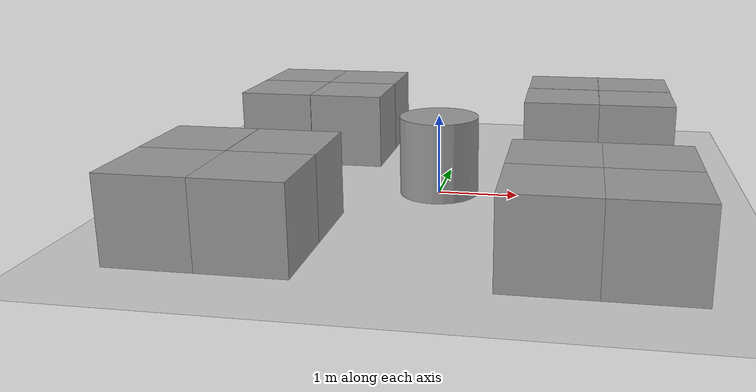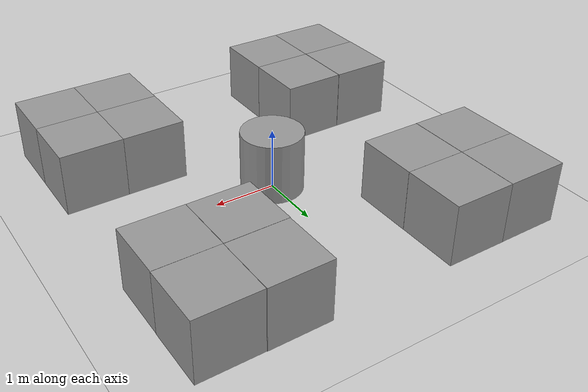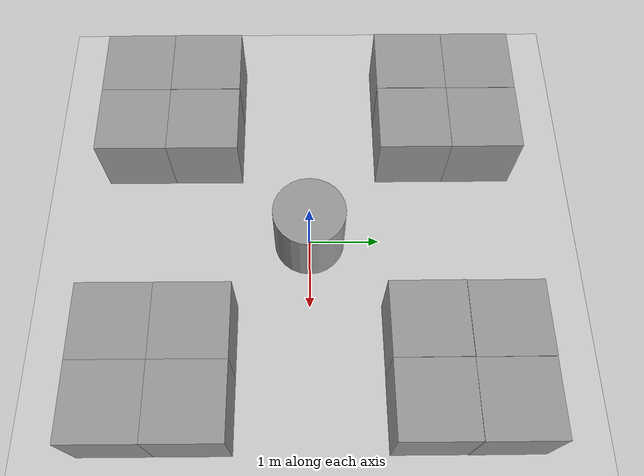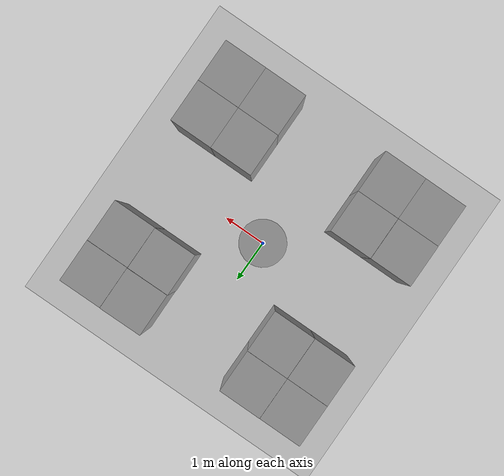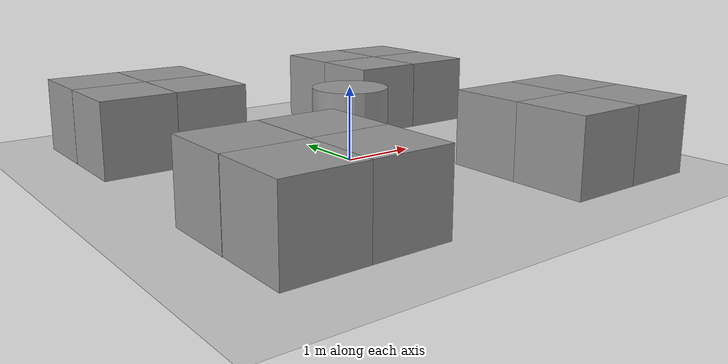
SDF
<sdf version="1.7">
 <world name="default">
  <light name="sun" type="directional">
   <pose>0 0 10 0 -0 0</pose>
   <diffuse>0.8 0.8 0.8 1</diffuse>
   <specular>0.2 0.2 0.2 1</specular>
   <attenuation>
    <range>1000</range>
    <constant>0.9</constant>
    <linear>0.01</linear>
    <quadratic>0.001</quadratic>
   </attenuation>
   <direction>0 0.01 -0.9</direction>
   <spot><inner_angle>0</inner_angle><outer_angle>0</outer_angle><falloff>0</falloff></spot>
  </light>
  <model name="ground_plane">
   <static>1</static>
   <link name="link">
    <collision name="collision">
     <geometry><plane><normal>0 0 1</normal><size>100 100</size></plane></geometry>
     <surface><friction><ode><mu>100</mu><mu2>50</mu2></ode></friction></surface>
    </collision>
    <visual name="visual">
     <cast_shadows>0</cast_shadows>
     <geometry><plane><normal>0 0 1</normal><size>100 100</size></plane></geometry>
     <material><script><uri>file://media/materials/scripts/gazebo.material</uri></script></material>
    </visual>
   </link>
  </model>
  <gravity>0 0 -9.8</gravity>
  <magnetic_field>6e-06 2.3e-05 -4.2e-05</magnetic_field>
  <atmosphere type="adiabatic"/>
  <physics type="ode">
   <max_step_size>0.001</max_step_size>
   <real_time_factor>1</real_time_factor>
   <real_time_update_rate>1000</real_time_update_rate>
  </physics>
  <scene><ambient>0.4 0.4 0.4 1</ambient><background>0.7 0.7 0.7 1</background><shadows>1</shadows></scene>
  <spherical_coordinates>
   <surface_model>EARTH_WGS84</surface_model>
   <latitude_deg>0</latitude_deg>
   <longitude_deg>0</longitude_deg>
   <elevation>0</elevation>
   <heading_deg>0</heading_deg>
  </spherical_coordinates>
  <model name="unit_box">
   <pose>1.49814 1.49873 0.5 0 -0 0.005299</pose>
   <link name="link">
    <inertial>
     <mass>1</mass>
     <inertia>
      <ixx>0.166667</ixx>
      <ixy>0</ixy>
      <ixz>0</ixz>
      <iyy>0.166667</iyy>
      <iyz>0</iyz>
      <izz>0.166667</izz>
     </inertia>
    </inertial>
    <collision name="collision"><geometry><box><size>1 1 1</size></box></geometry></collision>
    <visual name="visual">
     <geometry><box><size>1 1 1</size></box></geometry>
     <material>
      <script><name>Gazebo/Grey</name><uri>file://media/materials/scripts/gazebo.material</uri></script>
     </material>
    </visual>
   </link>
  </model>
  <model name="unit_box_0">
   <pose>1.49939 2.50155 0.5 0 -0 0.007593</pose>
   <link name="link">
    <inertial>
     <mass>1</mass>
     <inertia>
      <ixx>0.166667</ixx>
      <ixy>0</ixy>
      <ixz>0</ixz>
      <iyy>0.166667</iyy>
      <iyz>0</iyz>
      <izz>0.166667</izz>
     </inertia>
    </inertial>
    <collision name="collision"><geometry><box><size>1 1 1</size></box></geometry></collision>
    <visual name="visual">
     <geometry><box><size>1 1 1</size></box></geometry>
     <material>
      <script><name>Gazebo/Grey</name><uri>file://media/materials/scripts/gazebo.material</uri></script>
     </material>
    </visual>
   </link>
  </model>
  <model name="unit_box_1">
   <pose>2.50109 2.50121 0.5 0 -0 0.004211</pose>
   <link name="link">
    <inertial>
     <mass>1</mass>
     <inertia>
      <ixx>0.166667</ixx>
      <ixy>0</ixy>
      <ixz>0</ixz>
      <iyy>0.166667</iyy>
      <iyz>0</iyz>
      <izz>0.166667</izz>
     </inertia>
    </inertial>
    <collision name="collision"><geometry><box><size>1 1 1</size></box></geometry></collision>
    <visual name="visual">
     <geometry><box><size>1 1 1</size></box></geometry>
     <material>
      <script><name>Gazebo/Grey</name><uri>file://media/materials/scripts/gazebo.material</uri></script>
     </material>
    </visual>
   </link>
  </model>
  <model name="unit_box_2">
   <pose>2.5002 1.49973 0.5 0 -0 0.001264</pose>
   <link name="link">
    <inertial>
     <mass>1</mass>
     <inertia>
      <ixx>0.166667</ixx>
      <ixy>0</ixy>
      <ixz>0</ixz>
      <iyy>0.166667</iyy>
      <iyz>0</iyz>
      <izz>0.166667</izz>
     </inertia>
    </inertial>
    <collision name="collision"><geometry><box><size>1 1 1</size></box></geometry></collision>
    <visual name="visual">
     <geometry><box><size>1 1 1</size></box></geometry>
     <material>
      <script><name>Gazebo/Grey</name><uri>file://media/materials/scripts/gazebo.material</uri></script>
     </material>
    </visual>
   </link>
  </model>
  <model name="unit_box_3">
   <pose>1.50001 -1.5 0.499995 -0 1e-05 9e-06</pose>
   <link name="link">
    <inertial>
     <mass>1</mass>
     <inertia>
      <ixx>0.166667</ixx>
      <ixy>0</ixy>
      <ixz>0</ixz>
      <iyy>0.166667</iyy>
      <iyz>0</iyz>
      <izz>0.166667</izz>
     </inertia>
    </inertial>
    <collision name="collision"><geometry><box><size>1 1 1</size></box></geometry></collision>
    <visual name="visual">
     <geometry><box><size>1 1 1</size></box></geometry>
     <material>
      <script><name>Gazebo/Grey</name><uri>file://media/materials/scripts/gazebo.material</uri></script>
     </material>
    </visual>
   </link>
  </model>
  <model name="unit_box_4">
   <pose>2.50001 -1.5 0.499995 0 -1e-05 9e-06</pose>
   <link name="link">
    <inertial>
     <mass>1</mass>
     <inertia>
      <ixx>0.166667</ixx>
      <ixy>0</ixy>
      <ixz>0</ixz>
      <iyy>0.166667</iyy>
      <iyz>0</iyz>
      <izz>0.166667</izz>
     </inertia>
    </inertial>
    <collision name="collision"><geometry><box><size>1 1 1</size></box></geometry></collision>
    <visual name="visual">
     <geometry><box><size>1 1 1</size></box></geometry>
     <material>
      <script><name>Gazebo/Grey</name><uri>file://media/materials/scripts/gazebo.material</uri></script>
     </material>
    </visual>
   </link>
  </model>
  <model name="unit_box_5">
   <pose>1.49999 -2.5 0.5 0 -0 9e-06</pose>
   <link name="link">
    <inertial>
     <mass>1</mass>
     <inertia>
      <ixx>0.166667</ixx>
      <ixy>0</ixy>
      <ixz>0</ixz>
      <iyy>0.166667</iyy>
      <iyz>0</iyz>
      <izz>0.166667</izz>
     </inertia>
    </inertial>
    <collision name="collision"><geometry><box><size>1 1 1</size></box></geometry></collision>
    <visual name="visual">
     <geometry><box><size>1 1 1</size></box></geometry>
     <material>
      <script><name>Gazebo/Grey</name><uri>file://media/materials/scripts/gazebo.material</uri></script>
     </material>
    </visual>
   </link>
  </model>
  <model name="unit_box_6">
   <pose>2.5 -2.50001 0.5 0 -0 7e-06</pose>
   <link name="link">
    <inertial>
     <mass>1</mass>
     <inertia>
      <ixx>0.166667</ixx>
      <ixy>0</ixy>
      <ixz>0</ixz>
      <iyy>0.166667</iyy>
      <iyz>0</iyz>
      <izz>0.166667</izz>
     </inertia>
    </inertial>
    <collision name="collision"><geometry><box><size>1 1 1</size></box></geometry></collision>
    <visual name="visual">
     <geometry><box><size>1 1 1</size></box></geometry>
     <material>
      <script><name>Gazebo/Grey</name><uri>file://media/materials/scripts/gazebo.material</uri></script>
     </material>
    </visual>
   </link>
  </model>
  <model name="unit_box_7">
   <pose>-1.50001 1.49997 0.5 0 0 -0.002079</pose>
   <link name="link">
    <inertial>
     <mass>1</mass>
     <inertia>
      <ixx>0.166667</ixx>
      <ixy>0</ixy>
      <ixz>0</ixz>
      <iyy>0.166667</iyy>
      <iyz>0</iyz>
      <izz>0.166667</izz>
     </inertia>
    </inertial>
    <collision name="collision"><geometry><box><size>1 1 1</size></box></geometry></collision>
    <visual name="visual">
     <geometry><box><size>1 1 1</size></box></geometry>
     <material>
      <script><name>Gazebo/Grey</name><uri>file://media/materials/scripts/gazebo.material</uri></script>
     </material>
    </visual>
   </link>
  </model>
  <model name="unit_box_8">
   <pose>-1.49998 2.50024 0.5 -0 -0 -0.00155</pose>
   <link name="link">
    <inertial>
     <mass>1</mass>
     <inertia>
      <ixx>0.166667</ixx>
      <ixy>0</ixy>
      <ixz>0</ixz>
      <iyy>0.166667</iyy>
      <iyz>0</iyz>
      <izz>0.166667</izz>
     </inertia>
    </inertial>
    <collision name="collision"><geometry><box><size>1 1 1</size></box></geometry></collision>
    <visual name="visual">
     <geometry><box><size>1 1 1</size></box></geometry>
     <material>
      <script><name>Gazebo/Grey</name><uri>file://media/materials/scripts/gazebo.material</uri></script>
     </material>
    </visual>
   </link>
  </model>
  <model name="unit_box_9">
   <pose>-2.50184 2.50032 0.5 0 0 -0.001908</pose>
   <link name="link">
    <inertial>
     <mass>1</mass>
     <inertia>
      <ixx>0.166667</ixx>
      <ixy>0</ixy>
      <ixz>0</ixz>
      <iyy>0.166667</iyy>
      <iyz>0</iyz>
      <izz>0.166667</izz>
     </inertia>
    </inertial>
    <collision name="collision"><geometry><box><size>1 1 1</size></box></geometry></collision>
    <visual name="visual">
     <geometry><box><size>1 1 1</size></box></geometry>
     <material>
      <script><name>Gazebo/Grey</name><uri>file://media/materials/scripts/gazebo.material</uri></script>
     </material>
    </visual>
   </link>
  </model>
  <model name="unit_box_10">
   <pose>-2.50305 1.50005 0.5 0 0 -0.002163</pose>
   <link name="link">
    <inertial>
     <mass>1</mass>
     <inertia>
      <ixx>0.166667</ixx>
      <ixy>0</ixy>
      <ixz>0</ixz>
      <iyy>0.166667</iyy>
      <iyz>0</iyz>
      <izz>0.166667</izz>
     </inertia>
    </inertial>
    <collision name="collision"><geometry><box><size>1 1 1</size></box></geometry></collision>
    <visual name="visual">
     <geometry><box><size>1 1 1</size></box></geometry>
     <material>
      <script><name>Gazebo/Grey</name><uri>file://media/materials/scripts/gazebo.material</uri></script>
     </material>
    </visual>
   </link>
  </model>
  <model name="unit_box_11">
   <pose>-1.49998 -1.49997 0.5 -0 -0 -0.00032</pose>
   <link name="link">
    <inertial>
     <mass>1</mass>
     <inertia>
      <ixx>0.166667</ixx>
      <ixy>0</ixy>
      <ixz>0</ixz>
      <iyy>0.166667</iyy>
      <iyz>0</iyz>
      <izz>0.166667</izz>
     </inertia>
    </inertial>
    <collision name="collision"><geometry><box><size>1 1 1</size></box></geometry></collision>
    <visual name="visual">
     <geometry><box><size>1 1 1</size></box></geometry>
     <material>
      <script><name>Gazebo/Grey</name><uri>file://media/materials/scripts/gazebo.material</uri></script>
     </material>
    </visual>
   </link>
  </model>
  <model name="unit_box_12">
   <pose>-1.50001 -2.50006 0.5 -0 -0 -0.000153</pose>
   <link name="link">
    <inertial>
     <mass>1</mass>
     <inertia>
      <ixx>0.166667</ixx>
      <ixy>0</ixy>
      <ixz>0</ixz>
      <iyy>0.166667</iyy>
      <iyz>0</iyz>
      <izz>0.166667</izz>
     </inertia>
    </inertial>
    <collision name="collision"><geometry><box><size>1 1 1</size></box></geometry></collision>
    <visual name="visual">
     <geometry><box><size>1 1 1</size></box></geometry>
     <material>
      <script><name>Gazebo/Grey</name><uri>file://media/materials/scripts/gazebo.material</uri></script>
     </material>
    </visual>
   </link>
  </model>
  <model name="unit_box_13">
   <pose>-2.50429 -1.49981 0.5 -0 -0 -0.00037</pose>
   <link name="link">
    <inertial>
     <mass>1</mass>
     <inertia>
      <ixx>0.166667</ixx>
      <ixy>0</ixy>
      <ixz>0</ixz>
      <iyy>0.166667</iyy>
      <iyz>0</iyz>
      <izz>0.166667</izz>
     </inertia>
    </inertial>
    <collision name="collision"><geometry><box><size>1 1 1</size></box></geometry></collision>
    <visual name="visual">
     <geometry><box><size>1 1 1</size></box></geometry>
     <material>
      <script><name>Gazebo/Grey</name><uri>file://media/materials/scripts/gazebo.material</uri></script>
     </material>
    </visual>
   </link>
  </model>
  <model name="unit_box_14">
   <pose>-2.50029 -2.49999 0.5 0 -0 -3.8e-05</pose>
   <link name="link">
    <inertial>
     <mass>1</mass>
     <inertia>
      <ixx>0.166667</ixx>
      <ixy>0</ixy>
      <ixz>0</ixz>
      <iyy>0.166667</iyy>
      <iyz>0</iyz>
      <izz>0.166667</izz>
     </inertia>
    </inertial>
    <collision name="collision"><geometry><box><size>1 1 1</size></box></geometry></collision>
    <visual name="visual">
     <geometry><box><size>1 1 1</size></box></geometry>
     <material>
      <script><name>Gazebo/Grey</name><uri>file://media/materials/scripts/gazebo.material</uri></script>
     </material>
    </visual>
   </link>
  </model>
  <model name="unit_cylinder">
   <pose>-2e-06 2e-06 0.499991 0 -0 0</pose>
   <link name="link">
    <inertial>
     <mass>1</mass>
     <inertia><ixx>0.145833</ixx><ixy>0</ixy><ixz>0</ixz><iyy>0.145833</iyy><iyz>0</iyz><izz>0.125</izz></inertia>
    </inertial>
    <collision name="collision">
     <geometry><cylinder><radius>0.5</radius><length>1</length></cylinder></geometry>
    </collision>
    <visual name="visual">
     <geometry><cylinder><radius>0.5</radius><length>1</length></cylinder></geometry>
     <material>
      <script><name>Gazebo/Grey</name><uri>file://media/materials/scripts/gazebo.material</uri></script>
     </material>
    </visual>
   </link>
  </model>
 </world>
</sdf>
